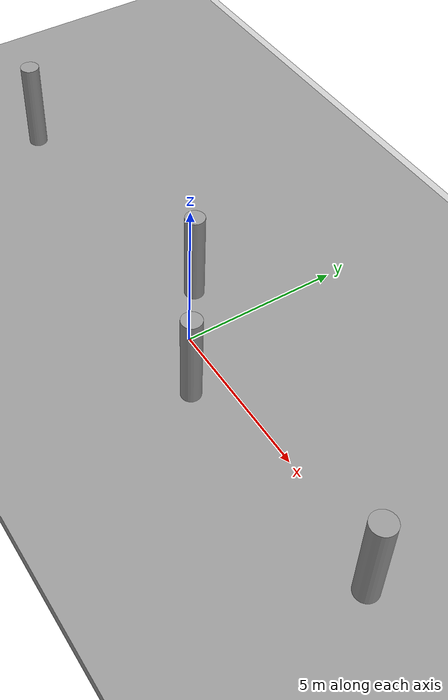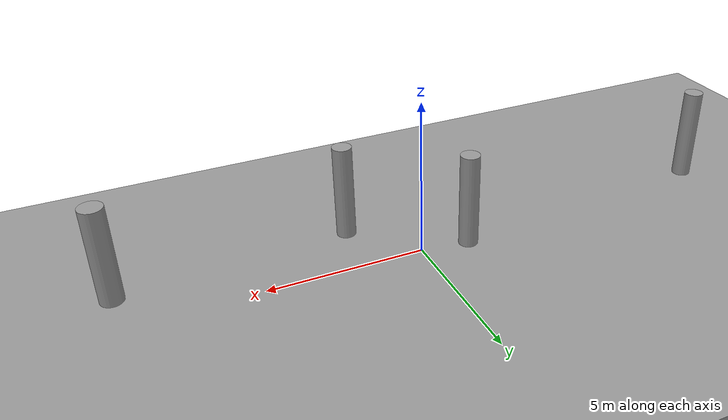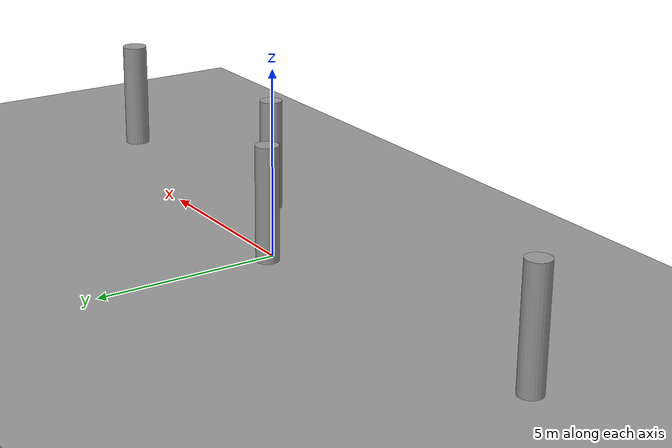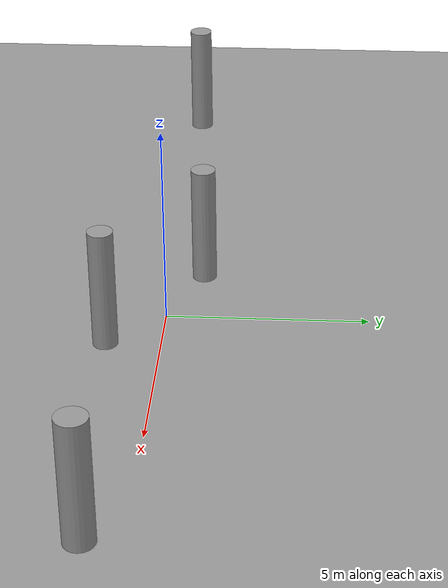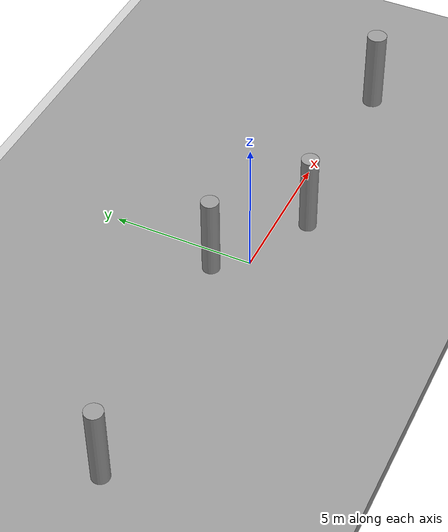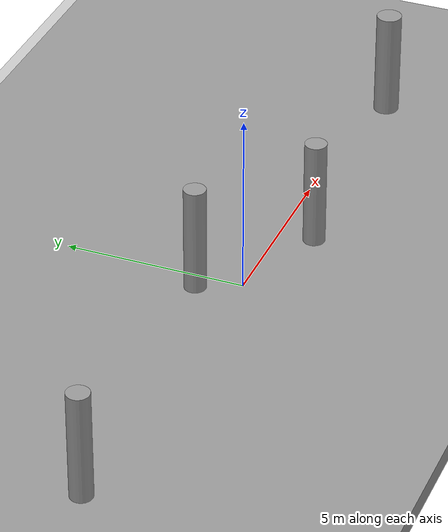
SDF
<sdf version="1.6">
 <world name="default">
  <light name="sun" type="directional">
   <pose>0 0 10 0 -0 0</pose>
   <diffuse>0.8 0.8 0.8 1</diffuse>
   <specular>0.2 0.2 0.2 1</specular>
   <attenuation>
    <range>1000</range>
    <constant>0.9</constant>
    <linear>0.01</linear>
    <quadratic>0.001</quadratic>
   </attenuation>
   <direction>-0.5 0.1 -0.9</direction>
  </light>
  <model name="ground_plane">
   <static>1</static>
   <link name="link">
    <collision name="collision">
     <geometry><plane><normal>0 0 1</normal><size>100 100</size></plane></geometry>
     <surface><friction><ode><mu>100</mu><mu2>50</mu2></ode></friction></surface>
    </collision>
    <visual name="visual">
     <cast_shadows>0</cast_shadows>
     <geometry><plane><normal>0 0 1</normal><size>100 100</size></plane></geometry>
     <material>
      <script><uri>file://media/materials/scripts/gazebo.material</uri><name>Gazebo/Grey</name></script>
     </material>
    </visual>
   </link>
  </model>
  <gravity>0 0 -9.8</gravity>
  <magnetic_field>6e-06 2.3e-05 -4.2e-05</magnetic_field>
  <atmosphere type="adiabatic"/>
  <physics name="default_physics" default="0" type="ode">
   <max_step_size>0.001</max_step_size>
   <real_time_factor>1</real_time_factor>
   <real_time_update_rate>1000</real_time_update_rate>
  </physics>
  <scene><ambient>0.4 0.4 0.4 1</ambient><background>0.7 0.7 0.7 1</background><shadows>1</shadows></scene>
  <audio><device>default</device></audio>
  <spherical_coordinates>
   <surface_model>EARTH_WGS84</surface_model>
   <latitude_deg>0</latitude_deg>
   <longitude_deg>0</longitude_deg>
   <elevation>0</elevation>
   <heading_deg>0</heading_deg>
  </spherical_coordinates>
  <model name="unit_cylinder_clone_clone_clone">
   <link name="link">
    <inertial>
     <mass>1</mass>
     <inertia><ixx>0.145833</ixx><ixy>0</ixy><ixz>0</ixz><iyy>0.145833</iyy><iyz>0</iyz><izz>0.125</izz></inertia>
    </inertial>
    <visual name="visual">
     <geometry><cylinder><radius>0.3</radius><length>3</length></cylinder></geometry>
     <material>
      <script><name>Gazebo/Grey</name><uri>file://media/materials/scripts/gazebo.material</uri></script>
      <shader type="vertex"><normal_map>__default__</normal_map></shader>
      <ambient>1 1 1 1</ambient>
      <diffuse>0.7 0.7 0.7 1</diffuse>
      <specular>0.01 0.01 0.01 1</specular>
      <emissive>0 0 0 1</emissive>
     </material>
    </visual>
    <collision name="collision">
     <geometry><cylinder><radius>0.3</radius><length>3</length></cylinder></geometry>
     <surface>
      <friction>
       <ode><mu>1</mu><mu2>1</mu2><fdir1>0 0 0</fdir1><slip1>0</slip1><slip2>0</slip2></ode>
       <torsional>
        <coefficient>1</coefficient>
        <patch_radius>0</patch_radius>
        <surface_radius>0</surface_radius>
        <use_patch_radius>1</use_patch_radius>
        <ode><slip>0</slip></ode>
       </torsional>
      </friction>
      <bounce><restitution_coefficient>0</restitution_coefficient><threshold>1e+06</threshold></bounce>
      <contact>
       <collide_without_contact>0</collide_without_contact>
       <collide_without_contact_bitmask>1</collide_without_contact_bitmask>
       <collide_bitmask>1</collide_bitmask>
       <ode>
        <soft_cfm>0</soft_cfm>
        <soft_erp>0.2</soft_erp>
        <kp>1e+13</kp>
        <kd>1</kd>
        <max_vel>0.01</max_vel>
        <min_depth>0</min_depth>
       </ode>
       <bullet>
        <split_impulse>1</split_impulse>
        <split_impulse_penetration_threshold>-0.01</split_impulse_penetration_threshold>
        <soft_cfm>0</soft_cfm>
        <soft_erp>0.2</soft_erp>
        <kp>1e+13</kp>
        <kd>1</kd>
       </bullet>
      </contact>
     </surface>
    </collision>
   </link>
   <static>1</static>
   <pose>-10.041 0.09793 2.00266 1.6e-05 4e-06 -0.004049</pose>
  </model>
  <model name="unit_cylinder_clone_clone_clone_clone">
   <link name="link">
    <inertial>
     <mass>1</mass>
     <inertia><ixx>0.145833</ixx><ixy>0</ixy><ixz>0</ixz><iyy>0.145833</iyy><iyz>0</iyz><izz>0.125</izz></inertia>
    </inertial>
    <visual name="visual">
     <geometry><cylinder><radius>0.3</radius><length>3</length></cylinder></geometry>
     <material>
      <script><name>Gazebo/Grey</name><uri>file://media/materials/scripts/gazebo.material</uri></script>
      <shader type="vertex"><normal_map>__default__</normal_map></shader>
      <ambient>1 1 1 1</ambient>
      <diffuse>0.7 0.7 0.7 1</diffuse>
      <specular>0.01 0.01 0.01 1</specular>
      <emissive>0 0 0 1</emissive>
     </material>
    </visual>
    <collision name="collision">
     <geometry><cylinder><radius>0.3</radius><length>3</length></cylinder></geometry>
     <surface>
      <friction>
       <ode><mu>1</mu><mu2>1</mu2><fdir1>0 0 0</fdir1><slip1>0</slip1><slip2>0</slip2></ode>
       <torsional>
        <coefficient>1</coefficient>
        <patch_radius>0</patch_radius>
        <surface_radius>0</surface_radius>
        <use_patch_radius>1</use_patch_radius>
        <ode><slip>0</slip></ode>
       </torsional>
      </friction>
      <bounce><restitution_coefficient>0</restitution_coefficient><threshold>1e+06</threshold></bounce>
      <contact>
       <collide_without_contact>0</collide_without_contact>
       <collide_without_contact_bitmask>1</collide_without_contact_bitmask>
       <collide_bitmask>1</collide_bitmask>
       <ode>
        <soft_cfm>0</soft_cfm>
        <soft_erp>0.2</soft_erp>
        <kp>1e+13</kp>
        <kd>1</kd>
        <max_vel>0.01</max_vel>
        <min_depth>0</min_depth>
       </ode>
       <bullet>
        <split_impulse>1</split_impulse>
        <split_impulse_penetration_threshold>-0.01</split_impulse_penetration_threshold>
        <soft_cfm>0</soft_cfm>
        <soft_erp>0.2</soft_erp>
        <kp>1e+13</kp>
        <kd>1</kd>
       </bullet>
      </contact>
     </surface>
    </collision>
   </link>
   <static>1</static>
   <pose>-1.15388 0.873764 2.00262 1.6e-05 5e-06 -0.047607</pose>
  </model>
  <model name="unit_cylinder_clone_clone_0_clone">
   <link name="link">
    <inertial>
     <mass>1</mass>
     <inertia><ixx>0.145833</ixx><ixy>0</ixy><ixz>0</ixz><iyy>0.145833</iyy><iyz>0</iyz><izz>0.125</izz></inertia>
    </inertial>
    <visual name="visual">
     <geometry><cylinder><radius>0.3</radius><length>3</length></cylinder></geometry>
     <material>
      <script><name>Gazebo/Grey</name><uri>file://media/materials/scripts/gazebo.material</uri></script>
      <shader type="vertex"><normal_map>__default__</normal_map></shader>
      <ambient>1 1 1 1</ambient>
      <diffuse>0.7 0.7 0.7 1</diffuse>
      <specular>0.01 0.01 0.01 1</specular>
      <emissive>0 0 0 1</emissive>
     </material>
    </visual>
    <collision name="collision">
     <geometry><cylinder><radius>0.3</radius><length>3</length></cylinder></geometry>
     <surface>
      <friction>
       <ode><mu>1</mu><mu2>1</mu2><fdir1>0 0 0</fdir1><slip1>0</slip1><slip2>0</slip2></ode>
       <torsional>
        <coefficient>1</coefficient>
        <patch_radius>0</patch_radius>
        <surface_radius>0</surface_radius>
        <use_patch_radius>1</use_patch_radius>
        <ode><slip>0</slip></ode>
       </torsional>
      </friction>
      <bounce><restitution_coefficient>0</restitution_coefficient><threshold>1e+06</threshold></bounce>
      <contact>
       <collide_without_contact>0</collide_without_contact>
       <collide_without_contact_bitmask>1</collide_without_contact_bitmask>
       <collide_bitmask>1</collide_bitmask>
       <ode>
        <soft_cfm>0</soft_cfm>
        <soft_erp>0.2</soft_erp>
        <kp>1e+13</kp>
        <kd>1</kd>
        <max_vel>0.01</max_vel>
        <min_depth>0</min_depth>
       </ode>
       <bullet>
        <split_impulse>1</split_impulse>
        <split_impulse_penetration_threshold>-0.01</split_impulse_penetration_threshold>
        <soft_cfm>0</soft_cfm>
        <soft_erp>0.2</soft_erp>
        <kp>1e+13</kp>
        <kd>1</kd>
       </bullet>
      </contact>
     </surface>
    </collision>
   </link>
   <static>1</static>
   <pose>2.03029 -1.21541 2.00235 -2e-06 2.7e-05 -0.046136</pose>
  </model>
  <model name="unit_cylinder_clone_clone_clone_clone_0">
   <link name="link">
    <inertial>
     <mass>1</mass>
     <inertia><ixx>0.145833</ixx><ixy>0</ixy><ixz>0</ixz><iyy>0.145833</iyy><iyz>0</iyz><izz>0.125</izz></inertia>
    </inertial>
    <visual name="visual">
     <geometry><cylinder><radius>0.35</radius><length>3</length></cylinder></geometry>
     <material>
      <script><name>Gazebo/Grey</name><uri>file://media/materials/scripts/gazebo.material</uri></script>
      <shader type="vertex"><normal_map>__default__</normal_map></shader>
      <ambient>1 1 1 1</ambient>
      <diffuse>0.7 0.7 0.7 1</diffuse>
      <specular>0.01 0.01 0.01 1</specular>
      <emissive>0 0 0 1</emissive>
     </material>
    </visual>
    <collision name="collision">
     <geometry><cylinder><radius>0.35</radius><length>3</length></cylinder></geometry>
     <surface>
      <friction>
       <ode><mu>1</mu><mu2>1</mu2><fdir1>0 0 0</fdir1><slip1>0</slip1><slip2>0</slip2></ode>
       <torsional>
        <coefficient>1</coefficient>
        <patch_radius>0</patch_radius>
        <surface_radius>0</surface_radius>
        <use_patch_radius>1</use_patch_radius>
        <ode><slip>0</slip></ode>
       </torsional>
      </friction>
      <bounce><restitution_coefficient>0</restitution_coefficient><threshold>1e+06</threshold></bounce>
      <contact>
       <collide_without_contact>0</collide_without_contact>
       <collide_without_contact_bitmask>1</collide_without_contact_bitmask>
       <collide_bitmask>1</collide_bitmask>
       <ode>
        <soft_cfm>0</soft_cfm>
        <soft_erp>0.2</soft_erp>
        <kp>1e+13</kp>
        <kd>1</kd>
        <max_vel>0.01</max_vel>
        <min_depth>0</min_depth>
       </ode>
       <bullet>
        <split_impulse>1</split_impulse>
        <split_impulse_penetration_threshold>-0.01</split_impulse_penetration_threshold>
        <soft_cfm>0</soft_cfm>
        <soft_erp>0.2</soft_erp>
        <kp>1e+13</kp>
        <kd>1</kd>
       </bullet>
      </contact>
     </surface>
    </collision>
   </link>
   <static>1</static>
   <pose>9.11238 -0.776615 2.00257 1.6e-05 4e-06 -0.004049</pose>
  </model>
  <model name="ground">
   <link name="link">
    <inertial>
     <mass>1</mass>
     <inertia>
      <ixx>0.166667</ixx>
      <ixy>0</ixy>
      <ixz>0</ixz>
      <iyy>0.166667</iyy>
      <iyz>0</iyz>
      <izz>0.166667</izz>
     </inertia>
    </inertial>
    <visual name="visual">
     <geometry><box><size>60 20 0.5</size></box></geometry>
     <material>
      <script><name>Gazebo/Grey</name><uri>file://media/materials/scripts/gazebo.material</uri></script>
      <shader type="vertex"><normal_map>__default__</normal_map></shader>
      <ambient>0.3 0.3 0.3 1</ambient>
      <diffuse>0.7 0.7 0.7 1</diffuse>
      <specular>0.01 0.01 0.01 1</specular>
      <emissive>0 0 0 1</emissive>
     </material>
    </visual>
    <collision name="collision">
     <geometry><box><size>60 20 0.5</size></box></geometry>
     <surface>
      <friction>
       <ode><mu>1</mu><mu2>1</mu2><fdir1>0 0 0</fdir1><slip1>0</slip1><slip2>0</slip2></ode>
       <torsional>
        <coefficient>1</coefficient>
        <patch_radius>0</patch_radius>
        <surface_radius>0</surface_radius>
        <use_patch_radius>1</use_patch_radius>
        <ode><slip>0</slip></ode>
       </torsional>
      </friction>
      <bounce><restitution_coefficient>0</restitution_coefficient><threshold>1e+06</threshold></bounce>
      <contact>
       <collide_without_contact>0</collide_without_contact>
       <collide_without_contact_bitmask>1</collide_without_contact_bitmask>
       <collide_bitmask>1</collide_bitmask>
       <ode>
        <soft_cfm>0</soft_cfm>
        <soft_erp>0.2</soft_erp>
        <kp>1e+13</kp>
        <kd>1</kd>
        <max_vel>0.01</max_vel>
        <min_depth>0</min_depth>
       </ode>
       <bullet>
        <split_impulse>1</split_impulse>
        <split_impulse_penetration_threshold>-0.01</split_impulse_penetration_threshold>
        <soft_cfm>0</soft_cfm>
        <soft_erp>0.2</soft_erp>
        <kp>1e+13</kp>
        <kd>1</kd>
       </bullet>
      </contact>
     </surface>
    </collision>
   </link>
   <static>1</static>
   <pose>-0.009361 -0.012874 0.252665 0 -0 0</pose>
  </model>
 </world>
</sdf>
